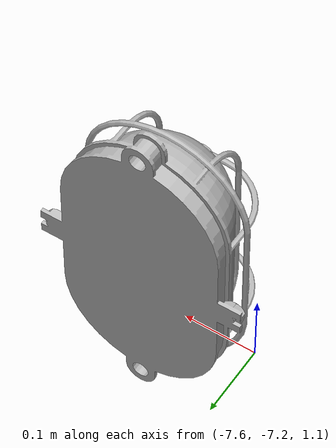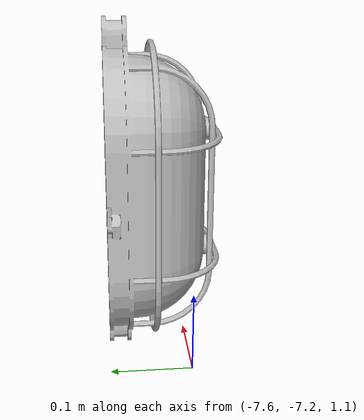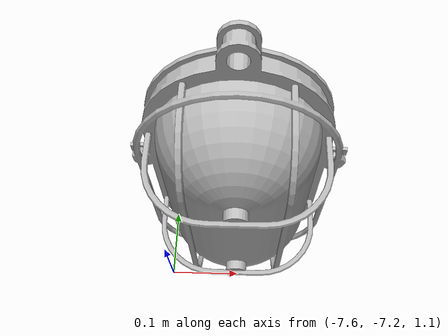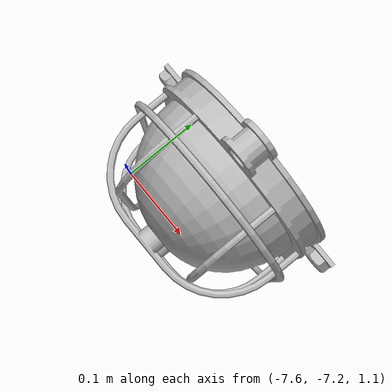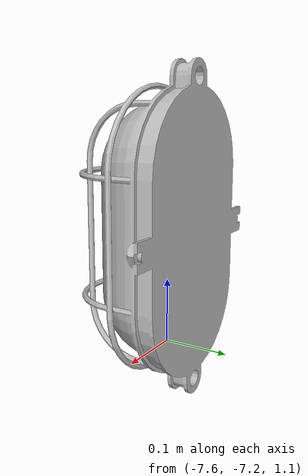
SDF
<?xml version="1.0"?>
<sdf version="1.8">
  <world name="maze_world">
    <include>
      <uri>model://ground</uri>
    </include>
    <include>
      <uri>https://fuel.gazebosim.org/1.0/OpenRobotics/models/Sun</uri>
    </include>
    <include>
      <name>wall_lamp</name>
      <uri>model://wall_lamp</uri>
      <pose>-7.5 -7.1 1.3 0 0 0</pose>
    </include>

    <!-- Etage 0 -->

  </world>
</sdf>

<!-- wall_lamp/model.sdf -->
<sdf version="1.10">
  <model name="wall_lamp">
    <static>true</static>
    <link name="lamp_link">
      <visual name="lamp_visual">
        <geometry>
          <mesh>
            <uri>model://wall_lamp/meshes/wall_lamp.dae</uri>
          </mesh>
        </geometry>
        <cast_shadows>false</cast_shadows>
      </visual>
      <light type="point" name="lamp_light">
        <pose>0 -0.2 0 0 0 0</pose>
        <diffuse>1 0.8 0.5 1</diffuse>
        <specular>0.9 0.9 0.9 1</specular>
        <attenuation>
            <range>3</range>
            <constant>0.5</constant>
            <linear>0.1</linear>
            <quadratic>0.01</quadratic>
        </attenuation>
        <cast_shadows>true</cast_shadows>
        <visualize>false</visualize>
    </light>
    </link>
  </model>
</sdf>
